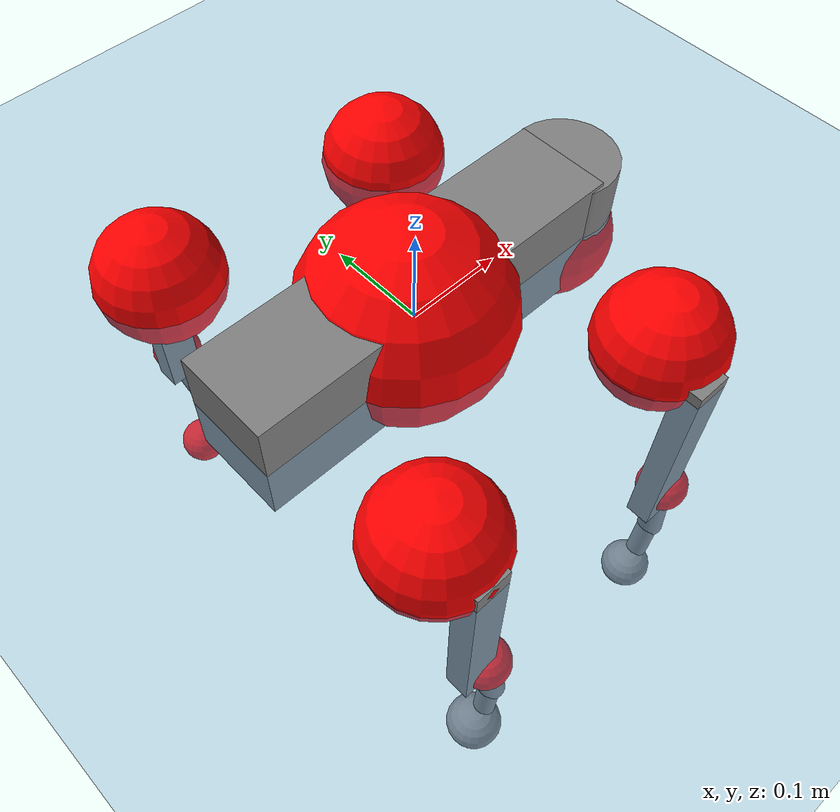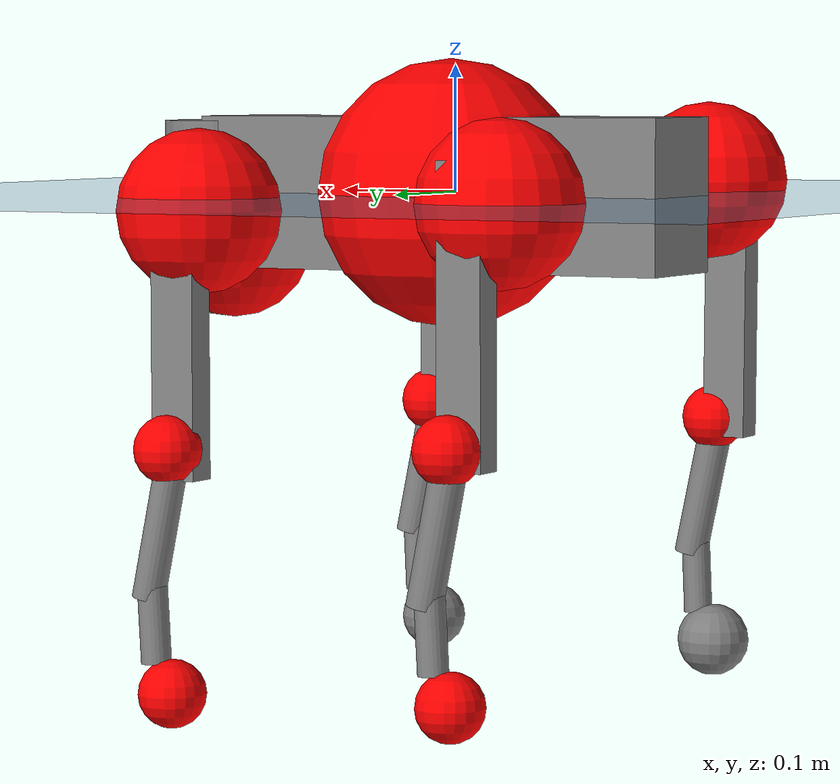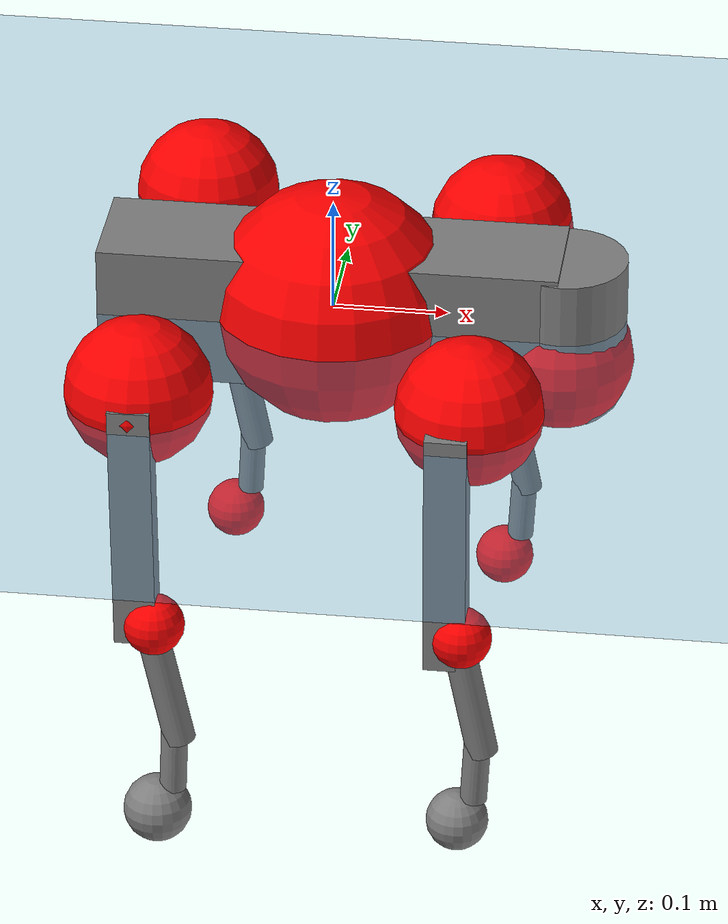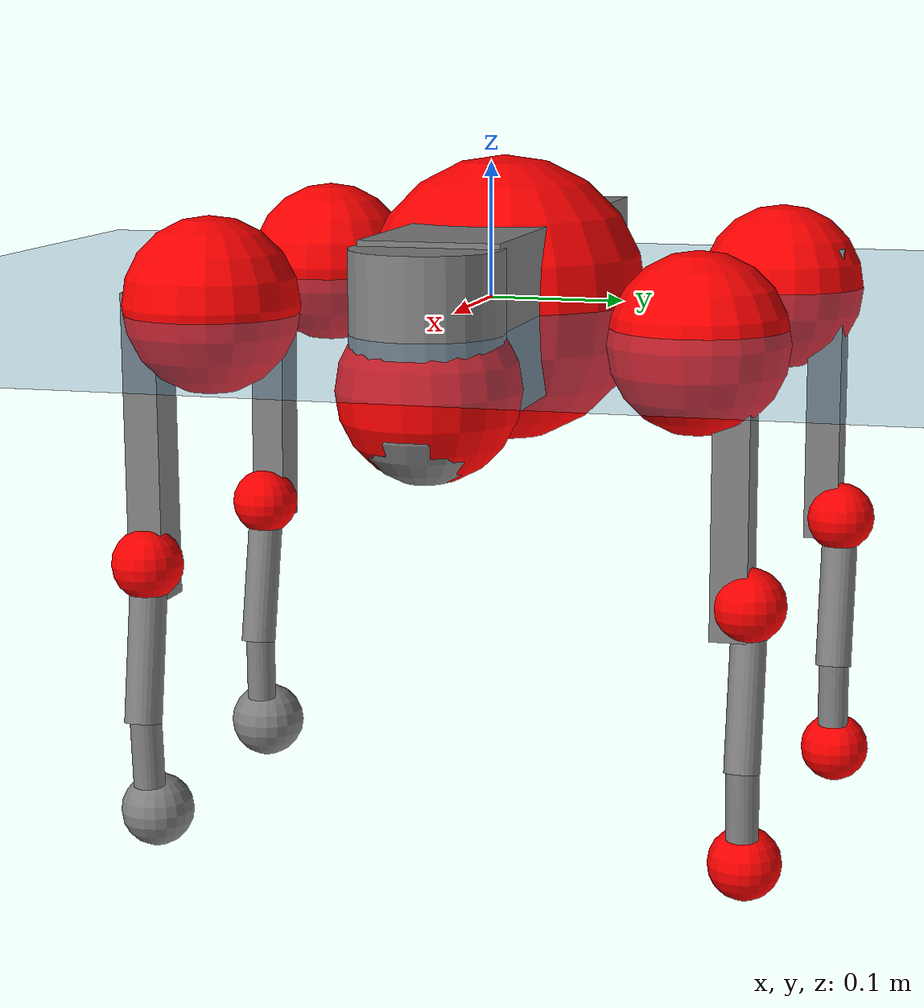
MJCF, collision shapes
<mujoco model="go2">
  <compiler angle="radian" assetdir="assets" balanceinertia="true" inertiafromgeom="false"/>

  <option timestep="0.005" density="1.2" viscosity="2e-05"/>

  <size nkey="1"/>

  <visual>
    <quality shadowsize="8192"/>
    <map shadowclip="0.5"/>
  </visual>

  <default>
    <default class="/">
      <geom contype="0" conaffinity="0" group="1" solref="-1000 -80"/>
      <site size="0.01 0.005 0.005" group="5"/>
      <general forcelimited="true" biastype="affine" gainprm="20" biasprm="0 -20 -0.5"/>
      <default class="go2">
        <joint armature="0.01" damping="0.01" frictionloss="0.2"/>
        <geom condim="1" margin="0.001"/>
        <default class="visual">
          <geom type="mesh" group="2"/>
        </default>
        <default class="collision">
          <geom group="3"/>
          <default class="foot">
            <geom size="0.022 0 0" condim="6" priority="1" friction="0.8 0.02 0.01" solimp="0.015 1 0.022"/>
          </default>
        </default>
        <default class="reward_collision_sphere">
          <geom group="5" rgba="1 0 0 1"/>
        </default>
      </default>
    </default>
  </default>

  <asset>
    <texture type="skybox" colorspace="auto" name="//unnamed_texture_0" builtin="gradient" rgb1="0.95 0.95 0.95" rgb2="0.95 0.95 0.95" width="100" height="600"/>
    <texture type="2d" colorspace="auto" name="texplane" builtin="checker" rgb1="0.345 0.575 0.748" rgb2="0.345 0.575 0.748" markrgb="1 1 1" width="512" height="512"/>
    <material name="MatPlane" class="/" texture="texplane" texuniform="true" texrepeat="2 2" specular="0.9"/>
    <material name="metal" class="/" rgba="0.9 0.95 0.95 1"/>
    <material name="black" class="/" rgba="0 0 0 1"/>
    <material name="white" class="/"/>
    <material name="gray" class="/" rgba="0.671705 0.692426 0.77427 1"/>
    <mesh name="base_0" class="/" file="base_0.obj"/>
    <mesh name="base_1" class="/" file="base_1.obj"/>
    <mesh name="base_2" class="/" file="base_2.obj"/>
    <mesh name="base_3" class="/" file="base_3.obj"/>
    <mesh name="base_4" class="/" file="base_4.obj"/>
    <mesh name="hip_0" class="/" file="hip_0.obj"/>
    <mesh name="hip_1" class="/" file="hip_1.obj"/>
    <mesh name="thigh_0" class="/" file="thigh_0.obj"/>
    <mesh name="thigh_1" class="/" file="thigh_1.obj"/>
    <mesh name="thigh_mirror_0" class="/" file="thigh_mirror_0.obj"/>
    <mesh name="thigh_mirror_1" class="/" file="thigh_mirror_1.obj"/>
    <mesh name="calf_0" class="/" file="calf_0.obj"/>
    <mesh name="calf_1" class="/" file="calf_1.obj"/>
    <mesh name="calf_mirror_0" class="/" file="calf_mirror_0.obj"/>
    <mesh name="calf_mirror_1" class="/" file="calf_mirror_1.obj"/>
    <mesh name="foot" class="/" file="foot.obj"/>
  </asset>

  <worldbody>
    <geom name="floor" class="/" size="100 100 0.125" type="plane" group="0" material="MatPlane"/>
    <light name="toplight_shadow" class="/" pos="0 0 5" dir="0.0990148 0.0990148 -0.990148" type="directional" ambient="0.04 0.04 0.04" diffuse="0.55 0.55 0.55" specular="0.12 0.12 0.12"/>
    <light name="toplight_fill" class="/" pos="0 0 5" dir="0.0990148 0.0990148 -0.990148" type="directional" castshadow="false" ambient="0.04 0.04 0.04" diffuse="0.3 0.3 0.3" specular="0.08 0.08 0.08"/>
    <body name="trunk" childclass="go2" pos="-0.00127457 0.00994474 -0.000463248" quat="1 -0.000108267 0.000156659 4.98937e-05">
      <inertial pos="0.0110867 0.0106912 -0.00480928" quat="-0.0331677 0.757194 0.0027995 0.652342" mass="8.31685" diaginertia="0.0209083 1.06058 0.0127183"/>
      <joint name="//unnamed_joint_0" type="free" armature="0" damping="0" frictionloss="0"/>
      <geom name="//unnamed_geom_1" class="visual" material="black" mesh="base_0"/>
      <geom name="//unnamed_geom_2" class="visual" material="black" mesh="base_1"/>
      <geom name="//unnamed_geom_3" class="visual" material="black" mesh="base_2"/>
      <geom name="//unnamed_geom_4" class="visual" material="white" mesh="base_3"/>
      <geom name="//unnamed_geom_5" class="visual" material="gray" mesh="base_4"/>
      <geom name="trunk_1" class="collision" size="0.19885 0.0494217 0.0602575" type="box"/>
      <geom name="trunk_2" class="collision" size="0.0528574 0.0475717" pos="0.201798 0 0.00877539" type="cylinder"/>
      <geom name="trunk_3" class="collision" size="0.049686" pos="0.207462 0 -0.0526523"/>
      <geom name="//unnamed_geom_9" class="reward_collision_sphere" size="0.105715"/>
      <geom name="//unnamed_geom_10" class="reward_collision_sphere" size="0.0634289" pos="0.198258 0 -0.0394892"/>
      <site name="imu" pos="-0.0661497 -0.0361691 0.0867803" size="0.0105715"/>
      <camera name="track" pos="0 -3.17169 0" quat="0.707107 0.707107 0 0" mode="trackcom"/>
      <camera name="ego_camera" pos="0.220916 0 0.0394892" quat="-0.5 -0.5 0.5 0.5"/>
      <body name="FL_hip" pos="0.128557 0.0595812 -0.0119811" quat="0.999987 0.00447206 0.00182679 0.00189191">
        <inertial pos="-0.00222432 0.00306255 -0.00656576" quat="0.498225 0.497577 0.507838 0.496276" mass="0.890389" diaginertia="0.000155297 0.00654703 0.000241243"/>
        <joint name="FL_hip_joint" pos="0 0 0" axis="0.999889 0.00256674 -0.0146427" range="-1.33672 0.911315" armature="0.0109225" damping="0.0568632" frictionloss="0.12131"/>
        <geom name="//unnamed_geom_11" class="visual" material="metal" mesh="hip_0"/>
        <geom name="//unnamed_geom_12" class="visual" material="gray" mesh="hip_1"/>
        <geom name="//unnamed_geom_13" class="collision" size="0.0486288 0.021143" pos="0 0.126867 0" quat="0.707107 0.707107 0 0" type="cylinder"/>
        <geom name="//unnamed_geom_14" class="reward_collision_sphere" size="0.0634289" pos="0 0.111009 0"/>
        <body name="FL_thigh" pos="0.00148432 0.137207 0.00219579" quat="0.99999 -0.0042797 -0.00119603 0.000800995">
          <inertial pos="-0.0116584 -0.043051 -0.0302528" quat="0.808396 0.0764994 0.0212611 0.58326" mass="1.35835" diaginertia="0.00105441 0.0594107 0.000480987"/>
          <joint name="FL_thigh_joint" pos="0 0 0" axis="-0.0457396 0.998694 0.0227469" stiffness="0.00100759" range="-1.69314 3.23898" armature="0.00496221" damping="0" frictionloss="0.160645"/>
          <geom name="//unnamed_geom_15" class="visual" material="metal" mesh="thigh_0"/>
          <geom name="//unnamed_geom_16" class="visual" material="gray" mesh="thigh_1"/>
          <geom name="//unnamed_geom_17" class="collision" size="0.112586 0.0129501 0.0179715" pos="0 0 -0.0934579" quat="0.707107 0 0.707107 0" type="box"/>
          <body name="FL_calf" pos="0.00407488 0.0124322 -0.18217" quat="0.999994 -0.000769386 0.00224518 0.00242332">
            <inertial pos="-0.00379355 -0.00124306 -0.110368" quat="0.708811 0.00566631 -0.00855756 0.705324" mass="0.293578" diaginertia="0.000302179 0.0124972 3.27565e-05"/>
            <joint name="FL_calf_joint" pos="0 0 0" axis="-0.0020349 0.999993 0.00305488" stiffness="0.00477791" range="-2.45304 -0.812532" armature="0.0146062" damping="0.00500319" frictionloss="0.201626"/>
            <geom name="//unnamed_geom_18" class="visual" material="gray" mesh="calf_0"/>
            <geom name="//unnamed_geom_19" class="visual" material="black" mesh="calf_1"/>
            <geom name="FL_calf0" class="collision" size="0.0126858 0.0634289" pos="0.0056645 0 -0.0526523" quat="0.994493 0 -0.104807 0" type="cylinder"/>
            <geom name="//unnamed_geom_21" class="collision" size="0.0116286 0.0343573" pos="0.0141613 0 -0.129876" quat="0.999688 0 0.0249974 0" type="cylinder"/>
            <geom name="//unnamed_geom_22" class="visual" pos="0 0 -0.186916" quat="1 0 0 0" material="black" mesh="foot"/>
            <geom name="FL_foot" class="foot" size="0.0261033" pos="-0.00141613 0 -0.186916"/>
            <geom name="//unnamed_geom_24" class="reward_collision_sphere" size="0.0264287"/>
            <geom name="//unnamed_geom_25" class="reward_collision_sphere" size="0.0264287" pos="-0.00141613 0 -0.186916"/>
            <site name="FL_foot" class="foot" pos="-0.00141613 0 -0.186916" size="0.0105715"/>
          </body>
        </body>
      </body>
      <body name="FR_hip" pos="0.138733 -0.0675823 0.00554461" quat="0.999999 0.000786041 -0.000765043 -0.00127936">
        <inertial pos="0.0008686 -0.00574011 -0.00302105" quat="0.498564 0.505525 0.498809 0.49706" mass="0.911977" diaginertia="0.00016427 0.00703584 0.000216665"/>
        <joint name="FR_hip_joint" pos="0 0 0" axis="0.999126 -0.0305606 0.0285127" stiffness="0.0241904" range="-1.03723 1.03114" armature="0.00885133" damping="0" frictionloss="0.163961"/>
        <geom name="//unnamed_geom_26" class="visual" pos="0 6.17046e-09 2.64664e-07" quat="4.63268e-05 1 0 0" material="metal" mesh="hip_0"/>
        <geom name="//unnamed_geom_27" class="visual" pos="0 1.00031e-08 -6.54615e-07" quat="4.63268e-05 1 0 0" material="gray" mesh="hip_1"/>
        <geom name="//unnamed_geom_28" class="collision" size="0.0486288 0.021143" pos="0 -0.126867 0" quat="0.707107 0.707107 0 0" type="cylinder"/>
        <geom name="//unnamed_geom_29" class="reward_collision_sphere" size="0.0634289" pos="0 -0.111009 0"/>
        <body name="FR_thigh" pos="-0.0124354 -0.165438 -0.0120521" quat="0.999995 0.00188828 -0.00100328 -0.00232119">
          <inertial pos="0.00364694 0.0493716 -0.0287035" quat="0.548959 -0.00399709 0.050424 0.834317" mass="1.0448" diaginertia="0.000913264 0.0510847 0.000420377"/>
          <joint name="FR_thigh_joint" pos="0 0 0" axis="-0.00369733 -0.999958 -0.00837603" stiffness="0.023209" range="-3.23502 1.57947" armature="0.0101498" damping="0" frictionloss="0.207992"/>
          <geom name="//unnamed_geom_30" class="visual" material="metal" mesh="thigh_mirror_0"/>
          <geom name="//unnamed_geom_31" class="visual" material="gray" mesh="thigh_mirror_1"/>
          <geom name="//unnamed_geom_32" class="collision" size="0.112586 0.0129501 0.0179715" pos="0 0 -0.0934579" quat="0.707107 0 0.707107 0" type="box"/>
          <body name="FR_calf" pos="0.0129492 -0.000200767 -0.179094" quat="0.999984 0.00240293 0.00292929 0.00418902">
            <inertial pos="-0.000366493 0.00138486 -0.132829" quat="0.675489 0.000218034 0.00460542 0.737356" mass="0.28324" diaginertia="0.000255891 0.0148709 2.62123e-05"/>
            <joint name="FR_calf_joint" pos="0 0 0" axis="0.0341347 -0.997604 -0.0601723" stiffness="0.0446856" range="0.807896 2.75931" armature="0.0044648" damping="0" frictionloss="0.329329"/>
            <geom name="//unnamed_geom_33" class="visual" material="gray" mesh="calf_mirror_0"/>
            <geom name="//unnamed_geom_34" class="visual" material="black" mesh="calf_mirror_1"/>
            <geom name="FR_calf0" class="collision" size="0.0137429 0.0634289" pos="0.00708063 0 -0.0526523" quat="0.995004 0 -0.0998334 0" type="cylinder"/>
            <geom name="//unnamed_geom_36" class="collision" size="0.0116286 0.0343573" pos="0.0141613 0 -0.129876" quat="0.999688 0 0.0249974 0" type="cylinder"/>
            <geom name="//unnamed_geom_37" class="visual" pos="0 0 -0.186916" quat="1 0 0 0" material="black" mesh="foot"/>
            <geom name="FR_foot" class="foot" size="0.0269573" pos="-0.00141613 0 -0.186916"/>
            <geom name="//unnamed_geom_39" class="reward_collision_sphere" size="0.0264287"/>
            <geom name="//unnamed_geom_40" class="reward_collision_sphere" size="0.0264287" pos="-0.00141613 0 -0.186916"/>
            <site name="FR_foot" class="foot" pos="-0.00141613 0 -0.186916" size="0.0105715"/>
          </body>
        </body>
      </body>
      <body name="RL_hip" pos="-0.137634 0.0749062 -0.00122801" quat="0.999998 -0.000497364 -0.000181848 -0.00216995">
        <inertial pos="0.00471257 0.013735 -0.00706171" quat="0.503335 0.494708 0.487273 0.514279" mass="0.712036" diaginertia="0.000148848 0.00559927 0.000229154"/>
        <joint name="RL_hip_joint" pos="0 0 0" axis="-0.999386 0.0338755 -0.00891387" stiffness="0.0152581" range="-1.1028 1.15363" armature="0.0107001" damping="0.00538457" frictionloss="0.187964"/>
        <geom name="//unnamed_geom_41" class="visual" pos="1.4764e-09 0 2.89409e-07" quat="4.63268e-05 0 1 0" material="metal" mesh="hip_0"/>
        <geom name="//unnamed_geom_42" class="visual" pos="2.39342e-09 0 2.56664e-07" quat="4.63268e-05 0 1 0" material="gray" mesh="hip_1"/>
        <geom name="//unnamed_geom_43" class="collision" size="0.0486288 0.021143" pos="0 0.126867 0" quat="0.707107 0.707107 0 0" type="cylinder"/>
        <geom name="//unnamed_geom_44" class="reward_collision_sphere" size="0.0634289" pos="0 0.111009 0"/>
        <body name="RL_thigh" pos="0.00792631 0.149026 0.013334" quat="0.999999 0.000365916 0.00120684 0.000131891">
          <inertial pos="-0.00149395 -0.0348584 -0.015742" quat="0.808671 0.0829772 -0.023664 0.581899" mass="1.04974" diaginertia="0.0010362 0.0513569 0.000432439"/>
          <joint name="RL_thigh_joint" pos="0 0 0" axis="0.0121527 0.999902 0.00688646" stiffness="0.00446937" range="-0.326171 4.37976" armature="0.0129338" damping="0.062083" frictionloss="0.217253"/>
          <geom name="//unnamed_geom_45" class="visual" material="metal" mesh="thigh_0"/>
          <geom name="//unnamed_geom_46" class="visual" material="gray" mesh="thigh_1"/>
          <geom name="//unnamed_geom_47" class="collision" size="0.112586 0.0129501 0.0179715" pos="0 0 -0.0934579" quat="0.707107 0 0.707107 0" type="box"/>
          <body name="RL_calf" pos="0.00809146 0.0142335 -0.190042" quat="0.999999 -0.000385398 0.000868566 0.00115535">
            <inertial pos="0.00488816 0.000492752 -0.122818" quat="0.711074 0.00125456 -0.00545186 0.703095" mass="0.232701" diaginertia="0.000205518 0.0132392 2.52913e-05"/>
            <joint name="RL_calf_joint" pos="0 0 0" axis="0.042729 0.999059 -0.00746605" stiffness="0.00442056" range="-2.99945 -0.643311" armature="0.0110437" damping="0.0477136" frictionloss="0.200773"/>
            <geom name="//unnamed_geom_48" class="visual" material="gray" mesh="calf_0"/>
            <geom name="//unnamed_geom_49" class="visual" material="black" mesh="calf_1"/>
            <geom name="RL_calf0" class="collision" size="0.0137429 0.0634289" pos="0.00708063 0 -0.0526523" quat="0.995004 0 -0.0998334 0" type="cylinder"/>
            <geom name="//unnamed_geom_51" class="collision" size="0.0116286 0.0343573" pos="0.0141613 0 -0.129876" quat="0.999688 0 0.0249974 0" type="cylinder"/>
            <geom name="//unnamed_geom_52" class="visual" pos="0 0 -0.186916" quat="1 0 0 0" material="black" mesh="foot"/>
            <geom name="RL_foot" class="foot" size="0.0189871" pos="-0.00141613 0 -0.186916"/>
            <geom name="//unnamed_geom_54" class="reward_collision_sphere" size="0.0264287"/>
            <geom name="//unnamed_geom_55" class="reward_collision_sphere" size="0.0264287" pos="-0.00141613 0 -0.186916"/>
            <site name="RL_foot" class="foot" pos="-0.00141613 0 -0.186916" size="0.0105715"/>
          </body>
        </body>
      </body>
      <body name="RR_hip" pos="-0.141054 -0.0725652 0.00641428" quat="0.999984 -0.00537848 -0.000641911 0.00145659">
        <inertial pos="0.000474004 -0.014151 0.00826075" quat="0.491955 0.489793 0.501878 0.515947" mass="0.731402" diaginertia="0.000125723 0.00510518 0.000191673"/>
        <joint name="RR_hip_joint" pos="0 0 0" axis="-0.998305 0.0416587 -0.0406397" range="-1.02502 1.29451" armature="0.0104025" damping="0.0274446" frictionloss="0.203318"/>
        <geom name="//unnamed_geom_56" class="visual" pos="-1.44601e-09 6.17046e-09 2.47451e-08" quat="2.14617e-09 4.63268e-05 4.63268e-05 -1" material="metal" mesh="hip_0"/>
        <geom name="//unnamed_geom_57" class="visual" pos="-2.46859e-09 1.00031e-08 9.11279e-07" quat="2.14617e-09 4.63268e-05 4.63268e-05 -1" material="gray" mesh="hip_1"/>
        <geom name="//unnamed_geom_58" class="collision" size="0.0486288 0.021143" pos="0 -0.126867 0" quat="0.707107 0.707107 0 0" type="cylinder"/>
        <geom name="//unnamed_geom_59" class="reward_collision_sphere" size="0.0634289" pos="0 -0.111009 0"/>
        <body name="RR_thigh" pos="0.000711766 -0.1605 -0.0076395" quat="0.999982 0.00146453 -0.00564986 -0.0011941">
          <inertial pos="-0.00327687 0.047475 -0.0362461" quat="0.549483 -0.0292962 0.0761231 0.831514" mass="1.49692" diaginertia="0.00115421 0.0646983 0.000498392"/>
          <joint name="RR_thigh_joint" pos="0 0 0" axis="-0.0636517 -0.99797 0.00186047" stiffness="0.023813" range="-4.57259 0.381365" armature="0.0104006" damping="0.0071687" frictionloss="0.190376"/>
          <geom name="//unnamed_geom_60" class="visual" material="metal" mesh="thigh_mirror_0"/>
          <geom name="//unnamed_geom_61" class="visual" material="gray" mesh="thigh_mirror_1"/>
          <geom name="//unnamed_geom_62" class="collision" size="0.112586 0.0129501 0.0179715" pos="0 0 -0.0934579" quat="0.707107 0 0.707107 0" type="box"/>
          <body name="RR_calf" pos="0.0150076 -0.00313232 -0.191454" quat="0.999996 0.000646402 0.000710134 -0.00282754">
            <inertial pos="-0.0100626 0.00151054 -0.120484" quat="0.708991 0.0129956 -0.0138976 0.70496" mass="0.289131" diaginertia="0.000227791 0.0155807 2.72099e-05"/>
            <joint name="RR_calf_joint" pos="0 0 0" axis="0.0581011 -0.99795 -0.0268308" stiffness="0.0330766" range="1.05741 2.47202" armature="0.0169455" damping="0" frictionloss="0.223369"/>
            <geom name="//unnamed_geom_63" class="visual" material="gray" mesh="calf_mirror_0"/>
            <geom name="//unnamed_geom_64" class="visual" material="black" mesh="calf_mirror_1"/>
            <geom name="RR_calf0" class="collision" size="0.0137429 0.0634289" pos="0.00708063 0 -0.0526523" quat="0.995004 0 -0.0998334 0" type="cylinder"/>
            <geom name="//unnamed_geom_66" class="collision" size="0.0116286 0.0343573" pos="0.0141613 0 -0.129876" quat="0.999688 0 0.0249974 0" type="cylinder"/>
            <geom name="//unnamed_geom_67" class="visual" pos="0 0 -0.186916" quat="1 0 0 0" material="black" mesh="foot"/>
            <geom name="RR_foot" class="foot" size="0.0296474" pos="-0.00141613 0 -0.186916"/>
            <geom name="//unnamed_geom_69" class="reward_collision_sphere" size="0.0264287"/>
            <geom name="//unnamed_geom_70" class="reward_collision_sphere" size="0.0264287" pos="-0.00141613 0 -0.186916"/>
            <site name="RR_foot" class="foot" pos="-0.00141613 0 -0.186916" size="0.0105715"/>
          </body>
        </body>
      </body>
    </body>
  </worldbody>

  <contact>
    <pair class="/" geom1="floor" geom2="FL_foot" name="//unnamed_contact_0"/>
    <pair class="/" geom1="floor" geom2="FR_foot" name="//unnamed_contact_1"/>
    <pair class="/" geom1="floor" geom2="RL_foot" name="//unnamed_contact_2"/>
    <pair class="/" geom1="floor" geom2="RR_foot" name="//unnamed_contact_3"/>
  </contact>

  <actuator>
    <general name="FL_hip" class="/" joint="FL_hip_joint" forcerange="-11.5796 11.5796" gainprm="14.4536" biasprm="0 -14.4536 -0.4656"/>
    <general name="FL_thigh" class="/" joint="FL_thigh_joint" forcerange="-33.1196 33.1196" gainprm="14.4536" biasprm="0 -14.4536 -0.4656"/>
    <general name="FL_calf" class="/" joint="FL_calf_joint" forcerange="-55.0326 55.0326" gainprm="14.4536" biasprm="0 -14.4536 -0.4656"/>
    <general name="FR_hip" class="/" joint="FR_hip_joint" forcerange="-13.1447 13.1447" gainprm="14.4536" biasprm="0 -14.4536 -0.4656"/>
    <general name="FR_thigh" class="/" joint="FR_thigh_joint" forcerange="-13.1112 13.1112" gainprm="14.4536" biasprm="0 -14.4536 -0.4656"/>
    <general name="FR_calf" class="/" joint="FR_calf_joint" forcerange="-32.8686 32.8686" gainprm="14.4536" biasprm="0 -14.4536 -0.4656"/>
    <general name="RL_hip" class="/" joint="RL_hip_joint" forcerange="-27.7022 27.7022" gainprm="14.4536" biasprm="0 -14.4536 -0.4656"/>
    <general name="RL_thigh" class="/" joint="RL_thigh_joint" forcerange="-24.0693 24.0693" gainprm="14.4536" biasprm="0 -14.4536 -0.4656"/>
    <general name="RL_calf" class="/" joint="RL_calf_joint" forcerange="-61.4956 61.4956" gainprm="14.4536" biasprm="0 -14.4536 -0.4656"/>
    <general name="RR_hip" class="/" joint="RR_hip_joint" forcerange="-37.7136 37.7136" gainprm="14.4536" biasprm="0 -14.4536 -0.4656"/>
    <general name="RR_thigh" class="/" joint="RR_thigh_joint" forcerange="-26.226 26.226" gainprm="14.4536" biasprm="0 -14.4536 -0.4656"/>
    <general name="RR_calf" class="/" joint="RR_calf_joint" forcerange="-51.6522 51.6522" gainprm="14.4536" biasprm="0 -14.4536 -0.4656"/>
  </actuator>

  <sensor>
    <gyro site="imu" name="imu_angular_velocity"/>
    <velocimeter site="imu" name="imu_linear_velocity"/>
    <framelinvel objtype="site" objname="FL_foot" name="FL_foot_global_linear_velocity"/>
    <framelinvel objtype="site" objname="FR_foot" name="FR_foot_global_linear_velocity"/>
    <framelinvel objtype="site" objname="RL_foot" name="RL_foot_global_linear_velocity"/>
    <framelinvel objtype="site" objname="RR_foot" name="RR_foot_global_linear_velocity"/>
  </sensor>

  <keyframe>
    <key name="home" qpos="0 0 0.325 1 0 0 0 0.1 0.8 -1.5 -0.1 -0.8 1.5 -0.1 0.8 -1.5 0.1 -0.8 1.5"/>
  </keyframe>
</mujoco>
